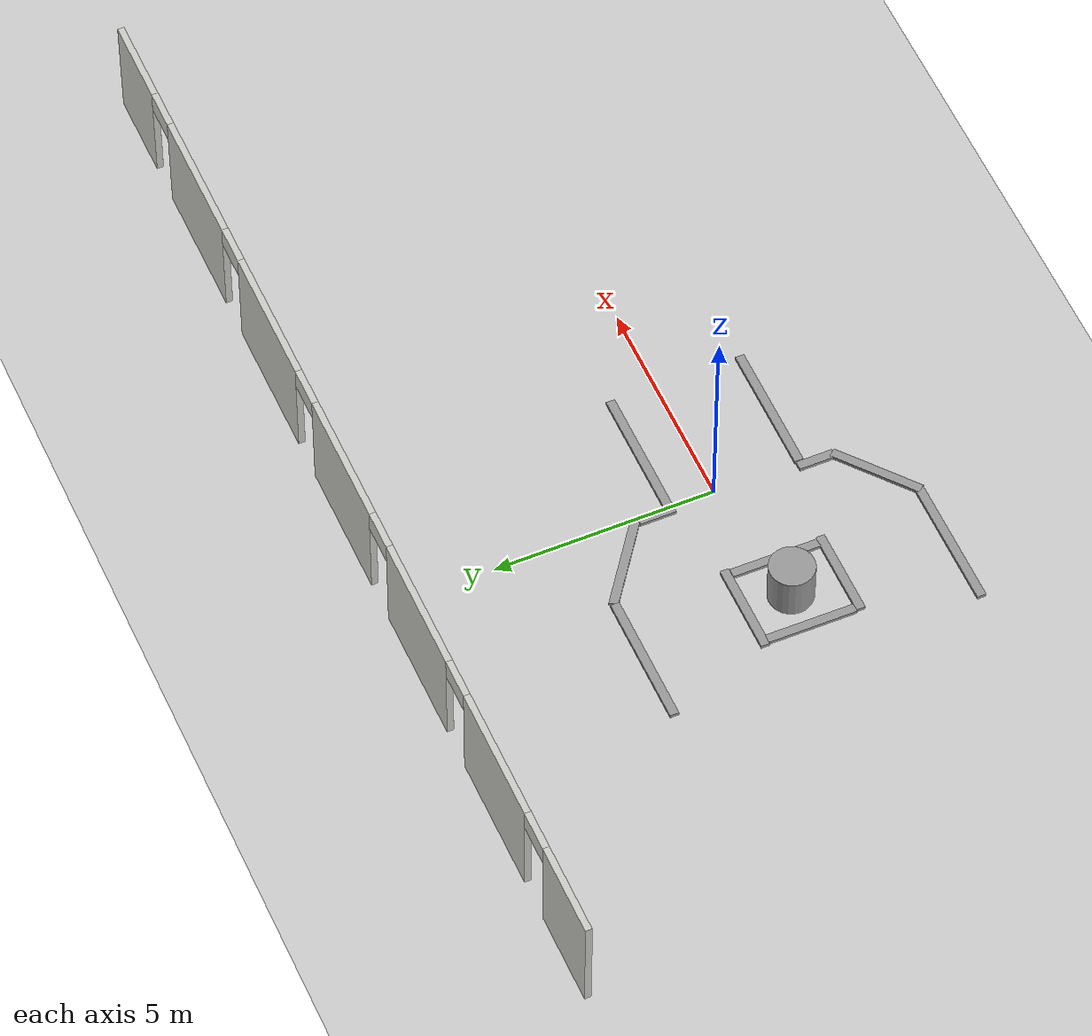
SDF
<sdf version="1.6">
 <world name="default">
  <model name="ground_plane">
   <static>1</static>
   <link name="link">
    <collision name="collision">
     <geometry><plane><normal>0 0 1</normal><size>100 100</size></plane></geometry>
     <surface><friction><ode><mu>100</mu><mu2>50</mu2></ode></friction></surface>
    </collision>
    <visual name="visual">
     <cast_shadows>0</cast_shadows>
     <geometry><plane><normal>0 0 1</normal><size>100 100</size></plane></geometry>
     <material>
      <script><uri>file://media/materials/scripts/gazebo.material</uri><name>Gazebo/Grey</name></script>
     </material>
    </visual>
   </link>
  </model>
  <model name="brick_box_3x1x3">
   <link name="link_1_clone_3_clone_10">
    <pose>6.19258 6.57027 0.5 0 0 -0.628314</pose>
    <inertial>
     <mass>0.633292</mass>
     <inertia>
      <ixx>0.107431</ixx>
      <ixy>0</ixy>
      <ixz>0</ixz>
      <iyy>0.0732112</iyy>
      <iyz>0</iyz>
      <izz>0.0750937</izz>
     </inertia>
    </inertial>
    <visual name="visual">
     <pose>0 0 -0.5 0 -0 0</pose>
     <geometry><box><size>2.17802 0.203535 0.1</size></box></geometry>
     <material>
      <lighting>1</lighting>
      <script><uri>file://media/materials/scripts/gazebo.material</uri><name>Gazebo/Grey</name></script>
      <ambient>0.3 0.3 0.3 1</ambient>
      <diffuse>0.7 0.7 0.7 1</diffuse>
      <specular>0.01 0.01 0.01 1</specular>
      <emissive>0 0 0 1</emissive>
      <shader type="vertex"><normal_map>__default__</normal_map></shader>
     </material>
    </visual>
    <collision name="collision">
     <pose>0 0 -0.5 0 -0 0</pose>
     <geometry><box><size>2.17802 0.203535 0.2</size></box></geometry>
     <surface>
      <friction>
       <ode><mu>1</mu><mu2>1</mu2><fdir1>0 0 0</fdir1><slip1>0</slip1><slip2>0</slip2></ode>
       <torsional>
        <coefficient>1</coefficient>
        <patch_radius>0</patch_radius>
        <surface_radius>0</surface_radius>
        <use_patch_radius>1</use_patch_radius>
        <ode><slip>0</slip></ode>
       </torsional>
      </friction>
      <bounce><restitution_coefficient>0</restitution_coefficient><threshold>1e+06</threshold></bounce>
      <contact>
       <collide_without_contact>0</collide_without_contact>
       <collide_without_contact_bitmask>1</collide_without_contact_bitmask>
       <collide_bitmask>1</collide_bitmask>
       <ode>
        <soft_cfm>0</soft_cfm>
        <soft_erp>0.2</soft_erp>
        <kp>1e+13</kp>
        <kd>1</kd>
        <max_vel>0.01</max_vel>
        <min_depth>0</min_depth>
       </ode>
       <bullet>
        <split_impulse>1</split_impulse>
        <split_impulse_penetration_threshold>-0.01</split_impulse_penetration_threshold>
        <soft_cfm>0</soft_cfm>
        <soft_erp>0.2</soft_erp>
        <kp>1e+13</kp>
        <kd>1</kd>
       </bullet>
      </contact>
     </surface>
    </collision>
   </link>
   <link name="link_1_clone_3_clone_10_clone_1_clone_0">
    <pose>7.00342 1.81838 0.5 0 0 -1.56821</pose>
    <inertial>
     <mass>0.239353</mass>
     <inertia>
      <ixx>0.0406036</ixx>
      <ixy>0</ixy>
      <ixz>0</ixz>
      <iyy>0.0210496</iyy>
      <iyz>0</iyz>
      <izz>0.0217608</izz>
     </inertia>
    </inertial>
    <visual name="visual">
     <pose>0 0 -0.5 0 -0 0</pose>
     <geometry><box><size>0.823187 0.203535 0.1</size></box></geometry>
     <material>
      <lighting>1</lighting>
      <script><uri>file://media/materials/scripts/gazebo.material</uri><name>Gazebo/Grey</name></script>
      <ambient>0.3 0.3 0.3 1</ambient>
      <diffuse>0.7 0.7 0.7 1</diffuse>
      <specular>0.01 0.01 0.01 1</specular>
      <emissive>0 0 0 1</emissive>
      <shader type="vertex"><normal_map>__default__</normal_map></shader>
     </material>
    </visual>
    <collision name="collision">
     <pose>0 0 -0.5 0 -0 0</pose>
     <geometry><box><size>0.823187 0.203535 0.2</size></box></geometry>
     <surface>
      <friction>
       <ode><mu>1</mu><mu2>1</mu2><fdir1>0 0 0</fdir1><slip1>0</slip1><slip2>0</slip2></ode>
       <torsional>
        <coefficient>1</coefficient>
        <patch_radius>0</patch_radius>
        <surface_radius>0</surface_radius>
        <use_patch_radius>1</use_patch_radius>
        <ode><slip>0</slip></ode>
       </torsional>
      </friction>
      <bounce><restitution_coefficient>0</restitution_coefficient><threshold>1e+06</threshold></bounce>
      <contact>
       <collide_without_contact>0</collide_without_contact>
       <collide_without_contact_bitmask>1</collide_without_contact_bitmask>
       <collide_bitmask>1</collide_bitmask>
       <ode>
        <soft_cfm>0</soft_cfm>
        <soft_erp>0.2</soft_erp>
        <kp>1e+13</kp>
        <kd>1</kd>
        <max_vel>0.01</max_vel>
        <min_depth>0</min_depth>
       </ode>
       <bullet>
        <split_impulse>1</split_impulse>
        <split_impulse_penetration_threshold>-0.01</split_impulse_penetration_threshold>
        <soft_cfm>0</soft_cfm>
        <soft_erp>0.2</soft_erp>
        <kp>1e+13</kp>
        <kd>1</kd>
       </bullet>
      </contact>
     </surface>
    </collision>
   </link>
   <link name="link_1_clone_3_clone_10_clone_1_clone_1">
    <pose>7.04036 5.46158 0.5 0 0 -1.56821</pose>
    <inertial>
     <mass>0.239353</mass>
     <inertia>
      <ixx>0.0406036</ixx>
      <ixy>0</ixy>
      <ixz>0</ixz>
      <iyy>0.0210496</iyy>
      <iyz>0</iyz>
      <izz>0.0217608</izz>
     </inertia>
    </inertial>
    <visual name="visual">
     <pose>0 0 -0.5 0 -0 0</pose>
     <geometry><box><size>0.823187 0.203535 0.1</size></box></geometry>
     <material>
      <lighting>1</lighting>
      <script><uri>file://media/materials/scripts/gazebo.material</uri><name>Gazebo/Grey</name></script>
      <ambient>0.3 0.3 0.3 1</ambient>
      <diffuse>0.7 0.7 0.7 1</diffuse>
      <specular>0.01 0.01 0.01 1</specular>
      <emissive>0 0 0 1</emissive>
      <shader type="vertex"><normal_map>__default__</normal_map></shader>
     </material>
    </visual>
    <collision name="collision">
     <pose>0 0 -0.5 0 -0 0</pose>
     <geometry><box><size>0.823187 0.203535 0.2</size></box></geometry>
     <surface>
      <friction>
       <ode><mu>1</mu><mu2>1</mu2><fdir1>0 0 0</fdir1><slip1>0</slip1><slip2>0</slip2></ode>
       <torsional>
        <coefficient>1</coefficient>
        <patch_radius>0</patch_radius>
        <surface_radius>0</surface_radius>
        <use_patch_radius>1</use_patch_radius>
        <ode><slip>0</slip></ode>
       </torsional>
      </friction>
      <bounce><restitution_coefficient>0</restitution_coefficient><threshold>1e+06</threshold></bounce>
      <contact>
       <collide_without_contact>0</collide_without_contact>
       <collide_without_contact_bitmask>1</collide_without_contact_bitmask>
       <collide_bitmask>1</collide_bitmask>
       <ode>
        <soft_cfm>0</soft_cfm>
        <soft_erp>0.2</soft_erp>
        <kp>1e+13</kp>
        <kd>1</kd>
        <max_vel>0.01</max_vel>
        <min_depth>0</min_depth>
       </ode>
       <bullet>
        <split_impulse>1</split_impulse>
        <split_impulse_penetration_threshold>-0.01</split_impulse_penetration_threshold>
        <soft_cfm>0</soft_cfm>
        <soft_erp>0.2</soft_erp>
        <kp>1e+13</kp>
        <kd>1</kd>
       </bullet>
      </contact>
     </surface>
    </collision>
   </link>
   <link name="link_1_clone_3_clone_10_clone_2">
    <pose>6.23458 0.770061 0.5 0 0 -2.45426</pose>
    <inertial>
     <mass>0.603389</mass>
     <inertia>
      <ixx>0.102359</ixx>
      <ixy>0</ixy>
      <ixz>0</ixz>
      <iyy>0.0679589</iyy>
      <iyz>0</iyz>
      <izz>0.0697524</izz>
     </inertia>
    </inertial>
    <visual name="visual">
     <pose>0 0 -0.5 0 -0 0</pose>
     <geometry><box><size>2.07517 0.203535 0.1</size></box></geometry>
     <material>
      <lighting>1</lighting>
      <script><uri>file://media/materials/scripts/gazebo.material</uri><name>Gazebo/Grey</name></script>
      <ambient>0.3 0.3 0.3 1</ambient>
      <diffuse>0.7 0.7 0.7 1</diffuse>
      <specular>0.01 0.01 0.01 1</specular>
      <emissive>0 0 0 1</emissive>
      <shader type="vertex"><normal_map>__default__</normal_map></shader>
     </material>
    </visual>
    <collision name="collision">
     <pose>0 0 -0.5 0 -0 0</pose>
     <geometry><box><size>2.07517 0.203535 0.2</size></box></geometry>
     <surface>
      <friction>
       <ode><mu>1</mu><mu2>1</mu2><fdir1>0 0 0</fdir1><slip1>0</slip1><slip2>0</slip2></ode>
       <torsional>
        <coefficient>1</coefficient>
        <patch_radius>0</patch_radius>
        <surface_radius>0</surface_radius>
        <use_patch_radius>1</use_patch_radius>
        <ode><slip>0</slip></ode>
       </torsional>
      </friction>
      <bounce><restitution_coefficient>0</restitution_coefficient><threshold>1e+06</threshold></bounce>
      <contact>
       <collide_without_contact>0</collide_without_contact>
       <collide_without_contact_bitmask>1</collide_without_contact_bitmask>
       <collide_bitmask>1</collide_bitmask>
       <ode>
        <soft_cfm>0</soft_cfm>
        <soft_erp>0.2</soft_erp>
        <kp>1e+13</kp>
        <kd>1</kd>
        <max_vel>0.01</max_vel>
        <min_depth>0</min_depth>
       </ode>
       <bullet>
        <split_impulse>1</split_impulse>
        <split_impulse_penetration_threshold>-0.01</split_impulse_penetration_threshold>
        <soft_cfm>0</soft_cfm>
        <soft_erp>0.2</soft_erp>
        <kp>1e+13</kp>
        <kd>1</kd>
       </bullet>
      </contact>
     </surface>
    </collision>
   </link>
   <link name="link_1_clone_3_clone_2">
    <pose>8.62043 2.14783 0.5 0 -0 0</pose>
    <inertial>
     <mass>1</mass>
     <inertia>
      <ixx>0.166667</ixx>
      <ixy>0</ixy>
      <ixz>0</ixz>
      <iyy>0.166667</iyy>
      <iyz>0</iyz>
      <izz>0.166667</izz>
     </inertia>
    </inertial>
    <visual name="visual">
     <pose>0 0 -0.5 0 -0 0</pose>
     <geometry><box><size>3 0.2 0.1</size></box></geometry>
     <material>
      <lighting>1</lighting>
      <script><uri>file://media/materials/scripts/gazebo.material</uri><name>Gazebo/Grey</name></script>
      <ambient>0.3 0.3 0.3 1</ambient>
      <diffuse>0.7 0.7 0.7 1</diffuse>
      <specular>0.01 0.01 0.01 1</specular>
      <emissive>0 0 0 1</emissive>
      <shader type="vertex"><normal_map>__default__</normal_map></shader>
     </material>
    </visual>
    <collision name="collision">
     <pose>0 0 -0.5 0 -0 0</pose>
     <geometry><box><size>3 0.2 0.2</size></box></geometry>
     <surface>
      <friction>
       <ode><mu>1</mu><mu2>1</mu2><fdir1>0 0 0</fdir1><slip1>0</slip1><slip2>0</slip2></ode>
       <torsional>
        <coefficient>1</coefficient>
        <patch_radius>0</patch_radius>
        <surface_radius>0</surface_radius>
        <use_patch_radius>1</use_patch_radius>
        <ode><slip>0</slip></ode>
       </torsional>
      </friction>
      <bounce><restitution_coefficient>0</restitution_coefficient><threshold>1e+06</threshold></bounce>
      <contact>
       <collide_without_contact>0</collide_without_contact>
       <collide_without_contact_bitmask>1</collide_without_contact_bitmask>
       <collide_bitmask>1</collide_bitmask>
       <ode>
        <soft_cfm>0</soft_cfm>
        <soft_erp>0.2</soft_erp>
        <kp>1e+13</kp>
        <kd>1</kd>
        <max_vel>0.01</max_vel>
        <min_depth>0</min_depth>
       </ode>
       <bullet>
        <split_impulse>1</split_impulse>
        <split_impulse_penetration_threshold>-0.01</split_impulse_penetration_threshold>
        <soft_cfm>0</soft_cfm>
        <soft_erp>0.2</soft_erp>
        <kp>1e+13</kp>
        <kd>1</kd>
       </bullet>
      </contact>
     </surface>
    </collision>
   </link>
   <link name="link_1_clone_3_clone_3">
    <pose>8.62079 5.14783 0.5 0 -0 0</pose>
    <inertial>
     <mass>1</mass>
     <inertia>
      <ixx>0.166667</ixx>
      <ixy>0</ixy>
      <ixz>0</ixz>
      <iyy>0.166667</iyy>
      <iyz>0</iyz>
      <izz>0.166667</izz>
     </inertia>
    </inertial>
    <visual name="visual">
     <pose>0 0 -0.5 0 -0 0</pose>
     <geometry><box><size>3 0.2 0.1</size></box></geometry>
     <material>
      <lighting>1</lighting>
      <script><uri>file://media/materials/scripts/gazebo.material</uri><name>Gazebo/Grey</name></script>
      <ambient>0.3 0.3 0.3 1</ambient>
      <diffuse>0.7 0.7 0.7 1</diffuse>
      <specular>0.01 0.01 0.01 1</specular>
      <emissive>0 0 0 1</emissive>
      <shader type="vertex"><normal_map>__default__</normal_map></shader>
     </material>
    </visual>
    <collision name="collision">
     <pose>0 0 -0.5 0 -0 0</pose>
     <geometry><box><size>3 0.2 0.2</size></box></geometry>
     <surface>
      <friction>
       <ode><mu>1</mu><mu2>1</mu2><fdir1>0 0 0</fdir1><slip1>0</slip1><slip2>0</slip2></ode>
       <torsional>
        <coefficient>1</coefficient>
        <patch_radius>0</patch_radius>
        <surface_radius>0</surface_radius>
        <use_patch_radius>1</use_patch_radius>
        <ode><slip>0</slip></ode>
       </torsional>
      </friction>
      <bounce><restitution_coefficient>0</restitution_coefficient><threshold>1e+06</threshold></bounce>
      <contact>
       <collide_without_contact>0</collide_without_contact>
       <collide_without_contact_bitmask>1</collide_without_contact_bitmask>
       <collide_bitmask>1</collide_bitmask>
       <ode>
        <soft_cfm>0</soft_cfm>
        <soft_erp>0.2</soft_erp>
        <kp>1e+13</kp>
        <kd>1</kd>
        <max_vel>0.01</max_vel>
        <min_depth>0</min_depth>
       </ode>
       <bullet>
        <split_impulse>1</split_impulse>
        <split_impulse_penetration_threshold>-0.01</split_impulse_penetration_threshold>
        <soft_cfm>0</soft_cfm>
        <soft_erp>0.2</soft_erp>
        <kp>1e+13</kp>
        <kd>1</kd>
       </bullet>
      </contact>
     </surface>
    </collision>
   </link>
   <link name="link_1_clone_3_clone_6">
    <pose>3.96174 0.14876 0.5 0 -0 0</pose>
    <inertial>
     <mass>1</mass>
     <inertia>
      <ixx>0.166667</ixx>
      <ixy>0</ixy>
      <ixz>0</ixz>
      <iyy>0.166667</iyy>
      <iyz>0</iyz>
      <izz>0.166667</izz>
     </inertia>
    </inertial>
    <visual name="visual">
     <pose>0 0 -0.5 0 -0 0</pose>
     <geometry><box><size>3 0.2 0.1</size></box></geometry>
     <material>
      <lighting>1</lighting>
      <script><uri>file://media/materials/scripts/gazebo.material</uri><name>Gazebo/Grey</name></script>
      <ambient>0.3 0.3 0.3 1</ambient>
      <diffuse>0.7 0.7 0.7 1</diffuse>
      <specular>0.01 0.01 0.01 1</specular>
      <emissive>0 0 0 1</emissive>
      <shader type="vertex"><normal_map>__default__</normal_map></shader>
     </material>
    </visual>
    <collision name="collision">
     <pose>0 0 -0.5 0 -0 0</pose>
     <geometry><box><size>3 0.2 0.2</size></box></geometry>
     <surface>
      <friction>
       <ode><mu>1</mu><mu2>1</mu2><fdir1>0 0 0</fdir1><slip1>0</slip1><slip2>0</slip2></ode>
       <torsional>
        <coefficient>1</coefficient>
        <patch_radius>0</patch_radius>
        <surface_radius>0</surface_radius>
        <use_patch_radius>1</use_patch_radius>
        <ode><slip>0</slip></ode>
       </torsional>
      </friction>
      <bounce><restitution_coefficient>0</restitution_coefficient><threshold>1e+06</threshold></bounce>
      <contact>
       <collide_without_contact>0</collide_without_contact>
       <collide_without_contact_bitmask>1</collide_without_contact_bitmask>
       <collide_bitmask>1</collide_bitmask>
       <ode>
        <soft_cfm>0</soft_cfm>
        <soft_erp>0.2</soft_erp>
        <kp>1e+13</kp>
        <kd>1</kd>
        <max_vel>0.01</max_vel>
        <min_depth>0</min_depth>
       </ode>
       <bullet>
        <split_impulse>1</split_impulse>
        <split_impulse_penetration_threshold>-0.01</split_impulse_penetration_threshold>
        <soft_cfm>0</soft_cfm>
        <soft_erp>0.2</soft_erp>
        <kp>1e+13</kp>
        <kd>1</kd>
       </bullet>
      </contact>
     </surface>
    </collision>
   </link>
   <link name="link_1_clone_3_clone_6_clone">
    <pose>4.16953 2.57278 0.5 0 -0 0</pose>
    <inertial>
     <mass>0.667428</mass>
     <inertia>
      <ixx>0.111238</ixx>
      <ixy>0</ixy>
      <ixz>0</ixz>
      <iyy>0.0803952</iyy>
      <iyz>0</iyz>
      <izz>0.0803952</izz>
     </inertia>
    </inertial>
    <visual name="visual">
     <pose>0 0 -0.5 0 -0 0</pose>
     <geometry><box><size>2.00229 0.2 0.1</size></box></geometry>
     <material>
      <lighting>1</lighting>
      <script><uri>file://media/materials/scripts/gazebo.material</uri><name>Gazebo/Grey</name></script>
      <ambient>0.3 0.3 0.3 1</ambient>
      <diffuse>0.7 0.7 0.7 1</diffuse>
      <specular>0.01 0.01 0.01 1</specular>
      <emissive>0 0 0 1</emissive>
      <shader type="vertex"><normal_map>__default__</normal_map></shader>
     </material>
    </visual>
    <collision name="collision">
     <pose>0 0 -0.5 0 -0 0</pose>
     <geometry><box><size>2.00229 0.2 0.2</size></box></geometry>
     <surface>
      <friction>
       <ode><mu>1</mu><mu2>1</mu2><fdir1>0 0 0</fdir1><slip1>0</slip1><slip2>0</slip2></ode>
       <torsional>
        <coefficient>1</coefficient>
        <patch_radius>0</patch_radius>
        <surface_radius>0</surface_radius>
        <use_patch_radius>1</use_patch_radius>
        <ode><slip>0</slip></ode>
       </torsional>
      </friction>
      <bounce><restitution_coefficient>0</restitution_coefficient><threshold>1e+06</threshold></bounce>
      <contact>
       <collide_without_contact>0</collide_without_contact>
       <collide_without_contact_bitmask>1</collide_without_contact_bitmask>
       <collide_bitmask>1</collide_bitmask>
       <ode>
        <soft_cfm>0</soft_cfm>
        <soft_erp>0.2</soft_erp>
        <kp>1e+13</kp>
        <kd>1</kd>
        <max_vel>0.01</max_vel>
        <min_depth>0</min_depth>
       </ode>
       <bullet>
        <split_impulse>1</split_impulse>
        <split_impulse_penetration_threshold>-0.01</split_impulse_penetration_threshold>
        <soft_cfm>0</soft_cfm>
        <soft_erp>0.2</soft_erp>
        <kp>1e+13</kp>
        <kd>1</kd>
       </bullet>
      </contact>
     </surface>
    </collision>
   </link>
   <link name="link_1_clone_3_clone_6_clone_0">
    <pose>4.15105 4.75979 0.5 0 -0 0</pose>
    <inertial>
     <mass>0.685907</mass>
     <inertia>
      <ixx>0.114318</ixx>
      <ixy>0</ixy>
      <ixz>0</ixz>
      <iyy>0.0840505</iyy>
      <iyz>0</iyz>
      <izz>0.0840505</izz>
     </inertia>
    </inertial>
    <visual name="visual">
     <pose>0 0 -0.5 0 -0 0</pose>
     <geometry><box><size>2.05772 0.2 0.1</size></box></geometry>
     <material>
      <lighting>1</lighting>
      <script><uri>file://media/materials/scripts/gazebo.material</uri><name>Gazebo/Grey</name></script>
      <ambient>0.3 0.3 0.3 1</ambient>
      <diffuse>0.7 0.7 0.7 1</diffuse>
      <specular>0.01 0.01 0.01 1</specular>
      <emissive>0 0 0 1</emissive>
      <shader type="vertex"><normal_map>__default__</normal_map></shader>
     </material>
    </visual>
    <collision name="collision">
     <pose>0 0 -0.5 0 -0 0</pose>
     <geometry><box><size>2.05772 0.2 0.2</size></box></geometry>
     <surface>
      <friction>
       <ode><mu>1</mu><mu2>1</mu2><fdir1>0 0 0</fdir1><slip1>0</slip1><slip2>0</slip2></ode>
       <torsional>
        <coefficient>1</coefficient>
        <patch_radius>0</patch_radius>
        <surface_radius>0</surface_radius>
        <use_patch_radius>1</use_patch_radius>
        <ode><slip>0</slip></ode>
       </torsional>
      </friction>
      <bounce><restitution_coefficient>0</restitution_coefficient><threshold>1e+06</threshold></bounce>
      <contact>
       <collide_without_contact>0</collide_without_contact>
       <collide_without_contact_bitmask>1</collide_without_contact_bitmask>
       <collide_bitmask>1</collide_bitmask>
       <ode>
        <soft_cfm>0</soft_cfm>
        <soft_erp>0.2</soft_erp>
        <kp>1e+13</kp>
        <kd>1</kd>
        <max_vel>0.01</max_vel>
        <min_depth>0</min_depth>
       </ode>
       <bullet>
        <split_impulse>1</split_impulse>
        <split_impulse_penetration_threshold>-0.01</split_impulse_penetration_threshold>
        <soft_cfm>0</soft_cfm>
        <soft_erp>0.2</soft_erp>
        <kp>1e+13</kp>
        <kd>1</kd>
       </bullet>
      </contact>
     </surface>
    </collision>
   </link>
   <link name="link_1_clone_3_clone_6_clone_clone">
    <pose>5.04034 3.65481 0.5 0 0 -1.57783</pose>
    <inertial>
     <mass>0.667428</mass>
     <inertia>
      <ixx>0.111238</ixx>
      <ixy>0</ixy>
      <ixz>0</ixz>
      <iyy>0.0803952</iyy>
      <iyz>0</iyz>
      <izz>0.0803952</izz>
     </inertia>
    </inertial>
    <visual name="visual">
     <pose>0 0 -0.5 0 -0 0</pose>
     <geometry><box><size>2.00229 0.2 0.1</size></box></geometry>
     <material>
      <lighting>1</lighting>
      <script><uri>file://media/materials/scripts/gazebo.material</uri><name>Gazebo/Grey</name></script>
      <ambient>0.3 0.3 0.3 1</ambient>
      <diffuse>0.7 0.7 0.7 1</diffuse>
      <specular>0.01 0.01 0.01 1</specular>
      <emissive>0 0 0 1</emissive>
      <shader type="vertex"><normal_map>__default__</normal_map></shader>
     </material>
    </visual>
    <collision name="collision">
     <pose>0 0 -0.5 0 -0 0</pose>
     <geometry><box><size>2.00229 0.2 0.2</size></box></geometry>
     <surface>
      <friction>
       <ode><mu>1</mu><mu2>1</mu2><fdir1>0 0 0</fdir1><slip1>0</slip1><slip2>0</slip2></ode>
       <torsional>
        <coefficient>1</coefficient>
        <patch_radius>0</patch_radius>
        <surface_radius>0</surface_radius>
        <use_patch_radius>1</use_patch_radius>
        <ode><slip>0</slip></ode>
       </torsional>
      </friction>
      <bounce><restitution_coefficient>0</restitution_coefficient><threshold>1e+06</threshold></bounce>
      <contact>
       <collide_without_contact>0</collide_without_contact>
       <collide_without_contact_bitmask>1</collide_without_contact_bitmask>
       <collide_bitmask>1</collide_bitmask>
       <ode>
        <soft_cfm>0</soft_cfm>
        <soft_erp>0.2</soft_erp>
        <kp>1e+13</kp>
        <kd>1</kd>
        <max_vel>0.01</max_vel>
        <min_depth>0</min_depth>
       </ode>
       <bullet>
        <split_impulse>1</split_impulse>
        <split_impulse_penetration_threshold>-0.01</split_impulse_penetration_threshold>
        <soft_cfm>0</soft_cfm>
        <soft_erp>0.2</soft_erp>
        <kp>1e+13</kp>
        <kd>1</kd>
       </bullet>
      </contact>
     </surface>
    </collision>
   </link>
   <link name="link_1_clone_3_clone_6_clone_clone_clone">
    <pose>3.24334 3.67433 0.5 0 0 -1.57783</pose>
    <inertial>
     <mass>0.667428</mass>
     <inertia>
      <ixx>0.111238</ixx>
      <ixy>0</ixy>
      <ixz>0</ixz>
      <iyy>0.0803952</iyy>
      <iyz>0</iyz>
      <izz>0.0803952</izz>
     </inertia>
    </inertial>
    <visual name="visual">
     <pose>0 0 -0.5 0 -0 0</pose>
     <geometry><box><size>2.00229 0.2 0.1</size></box></geometry>
     <material>
      <lighting>1</lighting>
      <script><uri>file://media/materials/scripts/gazebo.material</uri><name>Gazebo/Grey</name></script>
      <ambient>0.3 0.3 0.3 1</ambient>
      <diffuse>0.7 0.7 0.7 1</diffuse>
      <specular>0.01 0.01 0.01 1</specular>
      <emissive>0 0 0 1</emissive>
      <shader type="vertex"><normal_map>__default__</normal_map></shader>
     </material>
    </visual>
    <collision name="collision">
     <pose>0 0 -0.5 0 -0 0</pose>
     <geometry><box><size>2.00229 0.2 0.2</size></box></geometry>
     <surface>
      <friction>
       <ode><mu>1</mu><mu2>1</mu2><fdir1>0 0 0</fdir1><slip1>0</slip1><slip2>0</slip2></ode>
       <torsional>
        <coefficient>1</coefficient>
        <patch_radius>0</patch_radius>
        <surface_radius>0</surface_radius>
        <use_patch_radius>1</use_patch_radius>
        <ode><slip>0</slip></ode>
       </torsional>
      </friction>
      <bounce><restitution_coefficient>0</restitution_coefficient><threshold>1e+06</threshold></bounce>
      <contact>
       <collide_without_contact>0</collide_without_contact>
       <collide_without_contact_bitmask>1</collide_without_contact_bitmask>
       <collide_bitmask>1</collide_bitmask>
       <ode>
        <soft_cfm>0</soft_cfm>
        <soft_erp>0.2</soft_erp>
        <kp>1e+13</kp>
        <kd>1</kd>
        <max_vel>0.01</max_vel>
        <min_depth>0</min_depth>
       </ode>
       <bullet>
        <split_impulse>1</split_impulse>
        <split_impulse_penetration_threshold>-0.01</split_impulse_penetration_threshold>
        <soft_cfm>0</soft_cfm>
        <soft_erp>0.2</soft_erp>
        <kp>1e+13</kp>
        <kd>1</kd>
       </bullet>
      </contact>
     </surface>
    </collision>
   </link>
   <link name="link_1_clone_3_clone_7">
    <pose>3.80039 7.18262 0.5 0 -0 0</pose>
    <inertial>
     <mass>1</mass>
     <inertia>
      <ixx>0.166667</ixx>
      <ixy>0</ixy>
      <ixz>0</ixz>
      <iyy>0.166667</iyy>
      <iyz>0</iyz>
      <izz>0.166667</izz>
     </inertia>
    </inertial>
    <visual name="visual">
     <pose>0 0 -0.5 0 -0 0</pose>
     <geometry><box><size>3 0.2 0.1</size></box></geometry>
     <material>
      <lighting>1</lighting>
      <script><uri>file://media/materials/scripts/gazebo.material</uri><name>Gazebo/Grey</name></script>
      <ambient>0.3 0.3 0.3 1</ambient>
      <diffuse>0.7 0.7 0.7 1</diffuse>
      <specular>0.01 0.01 0.01 1</specular>
      <emissive>0 0 0 1</emissive>
      <shader type="vertex"><normal_map>__default__</normal_map></shader>
     </material>
    </visual>
    <collision name="collision">
     <pose>0 0 -0.5 0 -0 0</pose>
     <geometry><box><size>3 0.2 0.2</size></box></geometry>
     <surface>
      <friction>
       <ode><mu>1</mu><mu2>1</mu2><fdir1>0 0 0</fdir1><slip1>0</slip1><slip2>0</slip2></ode>
       <torsional>
        <coefficient>1</coefficient>
        <patch_radius>0</patch_radius>
        <surface_radius>0</surface_radius>
        <use_patch_radius>1</use_patch_radius>
        <ode><slip>0</slip></ode>
       </torsional>
      </friction>
      <bounce><restitution_coefficient>0</restitution_coefficient><threshold>1e+06</threshold></bounce>
      <contact>
       <collide_without_contact>0</collide_without_contact>
       <collide_without_contact_bitmask>1</collide_without_contact_bitmask>
       <collide_bitmask>1</collide_bitmask>
       <ode>
        <soft_cfm>0</soft_cfm>
        <soft_erp>0.2</soft_erp>
        <kp>1e+13</kp>
        <kd>1</kd>
        <max_vel>0.01</max_vel>
        <min_depth>0</min_depth>
       </ode>
       <bullet>
        <split_impulse>1</split_impulse>
        <split_impulse_penetration_threshold>-0.01</split_impulse_penetration_threshold>
        <soft_cfm>0</soft_cfm>
        <soft_erp>0.2</soft_erp>
        <kp>1e+13</kp>
        <kd>1</kd>
       </bullet>
      </contact>
     </surface>
    </collision>
   </link>
   <static>1</static>
   <pose>-7.10254 -4.10597 0 0 -0 0</pose>
  </model>
  <model name="unit_cylinder_0">
   <pose>-3.00095 -0.366483 0.499997 3e-06 4e-06 -0</pose>
   <link name="link">
    <inertial>
     <mass>1</mass>
     <inertia><ixx>0.145833</ixx><ixy>0</ixy><ixz>0</ixz><iyy>0.145833</iyy><iyz>0</iyz><izz>0.125</izz></inertia>
    </inertial>
    <collision name="collision">
     <geometry><cylinder><radius>0.5</radius><length>1</length></cylinder></geometry>
    </collision>
    <visual name="visual">
     <geometry><cylinder><radius>0.5</radius><length>1</length></cylinder></geometry>
     <material>
      <script><name>Gazebo/Grey</name><uri>file://media/materials/scripts/gazebo.material</uri></script>
     </material>
    </visual>
   </link>
  </model>
  <model name="CV1_giardino2">
   <link name="Wall_4">
    <pose>-0.226762 7.50382 0 0 -0 0</pose>
    <visual name="Wall_4_Visual_0">
     <pose>-11.4576 0 1.25 0 -0 0</pose>
     <geometry><box><size>2.08487 0.15 2.5</size></box></geometry>
     <material>
      <script><uri>file://media/materials/scripts/gazebo.material</uri><name>Gazebo/CeilingTiled</name></script>
      <ambient>1 1 1 1</ambient>
      <diffuse>1 1 1 1</diffuse>
      <specular>0 0 0 1</specular>
      <emissive>0 0 0 1</emissive>
     </material>
    </visual>
    <visual name="Wall_4_Visual_1">
     <pose>-7.98803 0 1.25 0 -0 0</pose>
     <geometry><box><size>3.0542 0.15 2.5</size></box></geometry>
     <material>
      <script><uri>file://media/materials/scripts/gazebo.material</uri><name>Gazebo/CeilingTiled</name></script>
      <ambient>1 1 1 1</ambient>
      <diffuse>1 1 1 1</diffuse>
      <specular>0 0 0 1</specular>
      <emissive>0 0 0 1</emissive>
     </material>
    </visual>
    <visual name="Wall_4_Visual_3">
     <pose>-0.033855 0 1.25 0 -0 0</pose>
     <geometry><box><size>3.07251 0.15 2.5</size></box></geometry>
     <material>
      <script><uri>file://media/materials/scripts/gazebo.material</uri><name>Gazebo/CeilingTiled</name></script>
      <ambient>1 1 1 1</ambient>
      <diffuse>1 1 1 1</diffuse>
      <specular>0 0 0 1</specular>
      <emissive>0 0 0 1</emissive>
     </material>
    </visual>
    <visual name="Wall_4_Visual_2">
     <pose>-4.01552 0 1.25 0 -0 0</pose>
     <geometry><box><size>3.09082 0.15 2.5</size></box></geometry>
     <material>
      <script><uri>file://media/materials/scripts/gazebo.material</uri><name>Gazebo/CeilingTiled</name></script>
      <ambient>1 1 1 1</ambient>
      <diffuse>1 1 1 1</diffuse>
      <specular>0 0 0 1</specular>
      <emissive>0 0 0 1</emissive>
     </material>
    </visual>
    <visual name="Wall_4_Visual_4">
     <pose>3.99357 0 1.25 0 -0 0</pose>
     <geometry><box><size>3.18235 0.15 2.5</size></box></geometry>
     <material>
      <script><uri>file://media/materials/scripts/gazebo.material</uri><name>Gazebo/CeilingTiled</name></script>
      <ambient>1 1 1 1</ambient>
      <diffuse>1 1 1 1</diffuse>
      <specular>0 0 0 1</specular>
      <emissive>0 0 0 1</emissive>
     </material>
    </visual>
    <visual name="Wall_4_Visual_5">
     <pose>8.04288 0 1.25 0 -0 0</pose>
     <geometry><box><size>3.11626 0.15 2.5</size></box></geometry>
     <material>
      <script><uri>file://media/materials/scripts/gazebo.material</uri><name>Gazebo/CeilingTiled</name></script>
      <ambient>1 1 1 1</ambient>
      <diffuse>1 1 1 1</diffuse>
      <specular>0 0 0 1</specular>
      <emissive>0 0 0 1</emissive>
     </material>
    </visual>
    <visual name="Wall_4_Visual_6">
     <pose>11.5005 0 1.25 0 -0 0</pose>
     <geometry><box><size>1.99899 0.15 2.5</size></box></geometry>
     <material>
      <script><uri>file://media/materials/scripts/gazebo.material</uri><name>Gazebo/CeilingTiled</name></script>
      <ambient>1 1 1 1</ambient>
      <diffuse>1 1 1 1</diffuse>
      <specular>0 0 0 1</specular>
      <emissive>0 0 0 1</emissive>
     </material>
    </visual>
    <visual name="Wall_4_Visual_7">
     <pose>-9.96513 0 2.25 0 -0 0</pose>
     <geometry><box><size>0.9 0.15 0.5</size></box></geometry>
     <material>
      <script><uri>file://media/materials/scripts/gazebo.material</uri><name>Gazebo/CeilingTiled</name></script>
      <ambient>1 1 1 1</ambient>
      <diffuse>1 1 1 1</diffuse>
      <specular>0 0 0 1</specular>
      <emissive>0 0 0 1</emissive>
     </material>
    </visual>
    <visual name="Wall_4_Visual_8">
     <pose>-6.01093 0 2.25 0 -0 0</pose>
     <geometry><box><size>0.9 0.15 0.5</size></box></geometry>
     <material>
      <script><uri>file://media/materials/scripts/gazebo.material</uri><name>Gazebo/CeilingTiled</name></script>
      <ambient>1 1 1 1</ambient>
      <diffuse>1 1 1 1</diffuse>
      <specular>0 0 0 1</specular>
      <emissive>0 0 0 1</emissive>
     </material>
    </visual>
    <visual name="Wall_4_Visual_9">
     <pose>-2.02011 0 2.25 0 -0 0</pose>
     <geometry><box><size>0.9 0.15 0.5</size></box></geometry>
     <material>
      <script><uri>file://media/materials/scripts/gazebo.material</uri><name>Gazebo/CeilingTiled</name></script>
      <ambient>1 1 1 1</ambient>
      <diffuse>1 1 1 1</diffuse>
      <specular>0 0 0 1</specular>
      <emissive>0 0 0 1</emissive>
     </material>
    </visual>
    <visual name="Wall_4_Visual_11">
     <pose>6.03475 0 2.25 0 -0 0</pose>
     <geometry><box><size>0.9 0.15 0.5</size></box></geometry>
     <material>
      <script><uri>file://media/materials/scripts/gazebo.material</uri><name>Gazebo/CeilingTiled</name></script>
      <ambient>1 1 1 1</ambient>
      <diffuse>1 1 1 1</diffuse>
      <specular>0 0 0 1</specular>
      <emissive>0 0 0 1</emissive>
     </material>
    </visual>
    <visual name="Wall_4_Visual_10">
     <pose>1.9524 0 2.25 0 -0 0</pose>
     <geometry><box><size>0.9 0.15 0.5</size></box></geometry>
     <material>
      <script><uri>file://media/materials/scripts/gazebo.material</uri><name>Gazebo/CeilingTiled</name></script>
      <ambient>1 1 1 1</ambient>
      <diffuse>1 1 1 1</diffuse>
      <specular>0 0 0 1</specular>
      <emissive>0 0 0 1</emissive>
     </material>
    </visual>
    <visual name="Wall_4_Visual_12">
     <pose>10.051 0 2.25 0 -0 0</pose>
     <geometry><box><size>0.9 0.15 0.5</size></box></geometry>
     <material>
      <script><uri>file://media/materials/scripts/gazebo.material</uri><name>Gazebo/CeilingTiled</name></script>
      <ambient>1 1 1 1</ambient>
      <diffuse>1 1 1 1</diffuse>
      <specular>0 0 0 1</specular>
      <emissive>0 0 0 1</emissive>
     </material>
    </visual>
    <collision name="Wall_4_Collision_11">
     <pose>6.03475 0 2.25 0 -0 0</pose>
     <geometry><box><size>0.9 0.15 0.5</size></box></geometry>
     <surface>
      <friction>
       <ode><mu>1</mu><mu2>1</mu2><fdir1>0 0 0</fdir1><slip1>0</slip1><slip2>0</slip2></ode>
       <torsional>
        <coefficient>1</coefficient>
        <patch_radius>0</patch_radius>
        <surface_radius>0</surface_radius>
        <use_patch_radius>1</use_patch_radius>
        <ode><slip>0</slip></ode>
       </torsional>
      </friction>
      <bounce><restitution_coefficient>0</restitution_coefficient><threshold>1e+06</threshold></bounce>
      <contact>
       <collide_without_contact>0</collide_without_contact>
       <collide_without_contact_bitmask>1</collide_without_contact_bitmask>
       <collide_bitmask>1</collide_bitmask>
       <ode>
        <soft_cfm>0</soft_cfm>
        <soft_erp>0.2</soft_erp>
        <kp>1e+13</kp>
        <kd>1</kd>
        <max_vel>0.01</max_vel>
        <min_depth>0</min_depth>
       </ode>
       <bullet>
        <split_impulse>1</split_impulse>
        <split_impulse_penetration_threshold>-0.01</split_impulse_penetration_threshold>
        <soft_cfm>0</soft_cfm>
        <soft_erp>0.2</soft_erp>
        <kp>1e+13</kp>
        <kd>1</kd>
       </bullet>
      </contact>
     </surface>
    </collision>
    <collision name="Wall_4_Collision_0">
     <pose>-11.4576 0 1.25 0 -0 0</pose>
     <geometry><box><size>2.08487 0.15 2.5</size></box></geometry>
     <surface>
      <friction>
       <ode><mu>1</mu><mu2>1</mu2><fdir1>0 0 0</fdir1><slip1>0</slip1><slip2>0</slip2></ode>
       <torsional>
        <coefficient>1</coefficient>
        <patch_radius>0</patch_radius>
        <surface_radius>0</surface_radius>
        <use_patch_radius>1</use_patch_radius>
        <ode><slip>0</slip></ode>
       </torsional>
      </friction>
      <bounce><restitution_coefficient>0</restitution_coefficient><threshold>1e+06</threshold></bounce>
      <contact>
       <collide_without_contact>0</collide_without_contact>
       <collide_without_contact_bitmask>1</collide_without_contact_bitmask>
       <collide_bitmask>1</collide_bitmask>
       <ode>
        <soft_cfm>0</soft_cfm>
        <soft_erp>0.2</soft_erp>
        <kp>1e+13</kp>
        <kd>1</kd>
        <max_vel>0.01</max_vel>
        <min_depth>0</min_depth>
       </ode>
       <bullet>
        <split_impulse>1</split_impulse>
        <split_impulse_penetration_threshold>-0.01</split_impulse_penetration_threshold>
        <soft_cfm>0</soft_cfm>
        <soft_erp>0.2</soft_erp>
        <kp>1e+13</kp>
        <kd>1</kd>
       </bullet>
      </contact>
     </surface>
    </collision>
    <collision name="Wall_4_Collision_1">
     <pose>-7.98803 0 1.25 0 -0 0</pose>
     <geometry><box><size>3.0542 0.15 2.5</size></box></geometry>
     <surface>
      <friction>
       <ode><mu>1</mu><mu2>1</mu2><fdir1>0 0 0</fdir1><slip1>0</slip1><slip2>0</slip2></ode>
       <torsional>
        <coefficient>1</coefficient>
        <patch_radius>0</patch_radius>
        <surface_radius>0</surface_radius>
        <use_patch_radius>1</use_patch_radius>
        <ode><slip>0</slip></ode>
       </torsional>
      </friction>
      <bounce><restitution_coefficient>0</restitution_coefficient><threshold>1e+06</threshold></bounce>
      <contact>
       <collide_without_contact>0</collide_without_contact>
       <collide_without_contact_bitmask>1</collide_without_contact_bitmask>
       <collide_bitmask>1</collide_bitmask>
       <ode>
        <soft_cfm>0</soft_cfm>
        <soft_erp>0.2</soft_erp>
        <kp>1e+13</kp>
        <kd>1</kd>
        <max_vel>0.01</max_vel>
        <min_depth>0</min_depth>
       </ode>
       <bullet>
        <split_impulse>1</split_impulse>
        <split_impulse_penetration_threshold>-0.01</split_impulse_penetration_threshold>
        <soft_cfm>0</soft_cfm>
        <soft_erp>0.2</soft_erp>
        <kp>1e+13</kp>
        <kd>1</kd>
       </bullet>
      </contact>
     </surface>
    </collision>
    <collision name="Wall_4_Collision_2">
     <pose>-4.01552 0 1.25 0 -0 0</pose>
     <geometry><box><size>3.09082 0.15 2.5</size></box></geometry>
     <surface>
      <friction>
       <ode><mu>1</mu><mu2>1</mu2><fdir1>0 0 0</fdir1><slip1>0</slip1><slip2>0</slip2></ode>
       <torsional>
        <coefficient>1</coefficient>
        <patch_radius>0</patch_radius>
        <surface_radius>0</surface_radius>
        <use_patch_radius>1</use_patch_radius>
        <ode><slip>0</slip></ode>
       </torsional>
      </friction>
      <bounce><restitution_coefficient>0</restitution_coefficient><threshold>1e+06</threshold></bounce>
      <contact>
       <collide_without_contact>0</collide_without_contact>
       <collide_without_contact_bitmask>1</collide_without_contact_bitmask>
       <collide_bitmask>1</collide_bitmask>
       <ode>
        <soft_cfm>0</soft_cfm>
        <soft_erp>0.2</soft_erp>
        <kp>1e+13</kp>
        <kd>1</kd>
        <max_vel>0.01</max_vel>
        <min_depth>0</min_depth>
       </ode>
       <bullet>
        <split_impulse>1</split_impulse>
        <split_impulse_penetration_threshold>-0.01</split_impulse_penetration_threshold>
        <soft_cfm>0</soft_cfm>
        <soft_erp>0.2</soft_erp>
        <kp>1e+13</kp>
        <kd>1</kd>
       </bullet>
      </contact>
     </surface>
    </collision>
    <collision name="Wall_4_Collision_3">
     <pose>-0.033855 0 1.25 0 -0 0</pose>
     <geometry><box><size>3.07251 0.15 2.5</size></box></geometry>
     <surface>
      <friction>
       <ode><mu>1</mu><mu2>1</mu2><fdir1>0 0 0</fdir1><slip1>0</slip1><slip2>0</slip2></ode>
       <torsional>
        <coefficient>1</coefficient>
        <patch_radius>0</patch_radius>
        <surface_radius>0</surface_radius>
        <use_patch_radius>1</use_patch_radius>
        <ode><slip>0</slip></ode>
       </torsional>
      </friction>
      <bounce><restitution_coefficient>0</restitution_coefficient><threshold>1e+06</threshold></bounce>
      <contact>
       <collide_without_contact>0</collide_without_contact>
       <collide_without_contact_bitmask>1</collide_without_contact_bitmask>
       <collide_bitmask>1</collide_bitmask>
       <ode>
        <soft_cfm>0</soft_cfm>
        <soft_erp>0.2</soft_erp>
        <kp>1e+13</kp>
        <kd>1</kd>
        <max_vel>0.01</max_vel>
        <min_depth>0</min_depth>
       </ode>
       <bullet>
        <split_impulse>1</split_impulse>
        <split_impulse_penetration_threshold>-0.01</split_impulse_penetration_threshold>
        <soft_cfm>0</soft_cfm>
        <soft_erp>0.2</soft_erp>
        <kp>1e+13</kp>
        <kd>1</kd>
       </bullet>
      </contact>
     </surface>
    </collision>
    <collision name="Wall_4_Collision_4">
     <pose>3.99357 0 1.25 0 -0 0</pose>
     <geometry><box><size>3.18235 0.15 2.5</size></box></geometry>
     <surface>
      <friction>
       <ode><mu>1</mu><mu2>1</mu2><fdir1>0 0 0</fdir1><slip1>0</slip1><slip2>0</slip2></ode>
       <torsional>
        <coefficient>1</coefficient>
        <patch_radius>0</patch_radius>
        <surface_radius>0</surface_radius>
        <use_patch_radius>1</use_patch_radius>
        <ode><slip>0</slip></ode>
       </torsional>
      </friction>
      <bounce><restitution_coefficient>0</restitution_coefficient><threshold>1e+06</threshold></bounce>
      <contact>
       <collide_without_contact>0</collide_without_contact>
       <collide_without_contact_bitmask>1</collide_without_contact_bitmask>
       <collide_bitmask>1</collide_bitmask>
       <ode>
        <soft_cfm>0</soft_cfm>
        <soft_erp>0.2</soft_erp>
        <kp>1e+13</kp>
        <kd>1</kd>
        <max_vel>0.01</max_vel>
        <min_depth>0</min_depth>
       </ode>
       <bullet>
        <split_impulse>1</split_impulse>
        <split_impulse_penetration_threshold>-0.01</split_impulse_penetration_threshold>
        <soft_cfm>0</soft_cfm>
        <soft_erp>0.2</soft_erp>
        <kp>1e+13</kp>
        <kd>1</kd>
       </bullet>
      </contact>
     </surface>
    </collision>
    <collision name="Wall_4_Collision_5">
     <pose>8.04288 0 1.25 0 -0 0</pose>
     <geometry><box><size>3.11626 0.15 2.5</size></box></geometry>
     <surface>
      <friction>
       <ode><mu>1</mu><mu2>1</mu2><fdir1>0 0 0</fdir1><slip1>0</slip1><slip2>0</slip2></ode>
       <torsional>
        <coefficient>1</coefficient>
        <patch_radius>0</patch_radius>
        <surface_radius>0</surface_radius>
        <use_patch_radius>1</use_patch_radius>
        <ode><slip>0</slip></ode>
       </torsional>
      </friction>
      <bounce><restitution_coefficient>0</restitution_coefficient><threshold>1e+06</threshold></bounce>
      <contact>
       <collide_without_contact>0</collide_without_contact>
       <collide_without_contact_bitmask>1</collide_without_contact_bitmask>
       <collide_bitmask>1</collide_bitmask>
       <ode>
        <soft_cfm>0</soft_cfm>
        <soft_erp>0.2</soft_erp>
        <kp>1e+13</kp>
        <kd>1</kd>
        <max_vel>0.01</max_vel>
        <min_depth>0</min_depth>
       </ode>
       <bullet>
        <split_impulse>1</split_impulse>
        <split_impulse_penetration_threshold>-0.01</split_impulse_penetration_threshold>
        <soft_cfm>0</soft_cfm>
        <soft_erp>0.2</soft_erp>
        <kp>1e+13</kp>
        <kd>1</kd>
       </bullet>
      </contact>
     </surface>
    </collision>
    <collision name="Wall_4_Collision_7">
     <pose>-9.96513 0 2.25 0 -0 0</pose>
     <geometry><box><size>0.9 0.15 0.5</size></box></geometry>
     <surface>
      <friction>
       <ode><mu>1</mu><mu2>1</mu2><fdir1>0 0 0</fdir1><slip1>0</slip1><slip2>0</slip2></ode>
       <torsional>
        <coefficient>1</coefficient>
        <patch_radius>0</patch_radius>
        <surface_radius>0</surface_radius>
        <use_patch_radius>1</use_patch_radius>
        <ode><slip>0</slip></ode>
       </torsional>
      </friction>
      <bounce><restitution_coefficient>0</restitution_coefficient><threshold>1e+06</threshold></bounce>
      <contact>
       <collide_without_contact>0</collide_without_contact>
       <collide_without_contact_bitmask>1</collide_without_contact_bitmask>
       <collide_bitmask>1</collide_bitmask>
       <ode>
        <soft_cfm>0</soft_cfm>
        <soft_erp>0.2</soft_erp>
        <kp>1e+13</kp>
        <kd>1</kd>
        <max_vel>0.01</max_vel>
        <min_depth>0</min_depth>
       </ode>
       <bullet>
        <split_impulse>1</split_impulse>
        <split_impulse_penetration_threshold>-0.01</split_impulse_penetration_threshold>
        <soft_cfm>0</soft_cfm>
        <soft_erp>0.2</soft_erp>
        <kp>1e+13</kp>
        <kd>1</kd>
       </bullet>
      </contact>
     </surface>
    </collision>
    <collision name="Wall_4_Collision_9">
     <pose>-2.02011 0 2.25 0 -0 0</pose>
     <geometry><box><size>0.9 0.15 0.5</size></box></geometry>
     <surface>
      <friction>
       <ode><mu>1</mu><mu2>1</mu2><fdir1>0 0 0</fdir1><slip1>0</slip1><slip2>0</slip2></ode>
       <torsional>
        <coefficient>1</coefficient>
        <patch_radius>0</patch_radius>
        <surface_radius>0</surface_radius>
        <use_patch_radius>1</use_patch_radius>
        <ode><slip>0</slip></ode>
       </torsional>
      </friction>
      <bounce><restitution_coefficient>0</restitution_coefficient><threshold>1e+06</threshold></bounce>
      <contact>
       <collide_without_contact>0</collide_without_contact>
       <collide_without_contact_bitmask>1</collide_without_contact_bitmask>
       <collide_bitmask>1</collide_bitmask>
       <ode>
        <soft_cfm>0</soft_cfm>
        <soft_erp>0.2</soft_erp>
        <kp>1e+13</kp>
        <kd>1</kd>
        <max_vel>0.01</max_vel>
        <min_depth>0</min_depth>
       </ode>
       <bullet>
        <split_impulse>1</split_impulse>
        <split_impulse_penetration_threshold>-0.01</split_impulse_penetration_threshold>
        <soft_cfm>0</soft_cfm>
        <soft_erp>0.2</soft_erp>
        <kp>1e+13</kp>
        <kd>1</kd>
       </bullet>
      </contact>
     </surface>
    </collision>
    <collision name="Wall_4_Collision_6">
     <pose>11.5005 0 1.25 0 -0 0</pose>
     <geometry><box><size>1.99899 0.15 2.5</size></box></geometry>
     <surface>
      <friction>
       <ode><mu>1</mu><mu2>1</mu2><fdir1>0 0 0</fdir1><slip1>0</slip1><slip2>0</slip2></ode>
       <torsional>
        <coefficient>1</coefficient>
        <patch_radius>0</patch_radius>
        <surface_radius>0</surface_radius>
        <use_patch_radius>1</use_patch_radius>
        <ode><slip>0</slip></ode>
       </torsional>
      </friction>
      <bounce><restitution_coefficient>0</restitution_coefficient><threshold>1e+06</threshold></bounce>
      <contact>
       <collide_without_contact>0</collide_without_contact>
       <collide_without_contact_bitmask>1</collide_without_contact_bitmask>
       <collide_bitmask>1</collide_bitmask>
       <ode>
        <soft_cfm>0</soft_cfm>
        <soft_erp>0.2</soft_erp>
        <kp>1e+13</kp>
        <kd>1</kd>
        <max_vel>0.01</max_vel>
        <min_depth>0</min_depth>
       </ode>
       <bullet>
        <split_impulse>1</split_impulse>
        <split_impulse_penetration_threshold>-0.01</split_impulse_penetration_threshold>
        <soft_cfm>0</soft_cfm>
        <soft_erp>0.2</soft_erp>
        <kp>1e+13</kp>
        <kd>1</kd>
       </bullet>
      </contact>
     </surface>
    </collision>
    <collision name="Wall_4_Collision_8">
     <pose>-6.01093 0 2.25 0 -0 0</pose>
     <geometry><box><size>0.9 0.15 0.5</size></box></geometry>
     <surface>
      <friction>
       <ode><mu>1</mu><mu2>1</mu2><fdir1>0 0 0</fdir1><slip1>0</slip1><slip2>0</slip2></ode>
       <torsional>
        <coefficient>1</coefficient>
        <patch_radius>0</patch_radius>
        <surface_radius>0</surface_radius>
        <use_patch_radius>1</use_patch_radius>
        <ode><slip>0</slip></ode>
       </torsional>
      </friction>
      <bounce><restitution_coefficient>0</restitution_coefficient><threshold>1e+06</threshold></bounce>
      <contact>
       <collide_without_contact>0</collide_without_contact>
       <collide_without_contact_bitmask>1</collide_without_contact_bitmask>
       <collide_bitmask>1</collide_bitmask>
       <ode>
        <soft_cfm>0</soft_cfm>
        <soft_erp>0.2</soft_erp>
        <kp>1e+13</kp>
        <kd>1</kd>
        <max_vel>0.01</max_vel>
        <min_depth>0</min_depth>
       </ode>
       <bullet>
        <split_impulse>1</split_impulse>
        <split_impulse_penetration_threshold>-0.01</split_impulse_penetration_threshold>
        <soft_cfm>0</soft_cfm>
        <soft_erp>0.2</soft_erp>
        <kp>1e+13</kp>
        <kd>1</kd>
       </bullet>
      </contact>
     </surface>
    </collision>
    <collision name="Wall_4_Collision_10">
     <pose>1.9524 0 2.25 0 -0 0</pose>
     <geometry><box><size>0.9 0.15 0.5</size></box></geometry>
     <surface>
      <friction>
       <ode><mu>1</mu><mu2>1</mu2><fdir1>0 0 0</fdir1><slip1>0</slip1><slip2>0</slip2></ode>
       <torsional>
        <coefficient>1</coefficient>
        <patch_radius>0</patch_radius>
        <surface_radius>0</surface_radius>
        <use_patch_radius>1</use_patch_radius>
        <ode><slip>0</slip></ode>
       </torsional>
      </friction>
      <bounce><restitution_coefficient>0</restitution_coefficient><threshold>1e+06</threshold></bounce>
      <contact>
       <collide_without_contact>0</collide_without_contact>
       <collide_without_contact_bitmask>1</collide_without_contact_bitmask>
       <collide_bitmask>1</collide_bitmask>
       <ode>
        <soft_cfm>0</soft_cfm>
        <soft_erp>0.2</soft_erp>
        <kp>1e+13</kp>
        <kd>1</kd>
        <max_vel>0.01</max_vel>
        <min_depth>0</min_depth>
       </ode>
       <bullet>
        <split_impulse>1</split_impulse>
        <split_impulse_penetration_threshold>-0.01</split_impulse_penetration_threshold>
        <soft_cfm>0</soft_cfm>
        <soft_erp>0.2</soft_erp>
        <kp>1e+13</kp>
        <kd>1</kd>
       </bullet>
      </contact>
     </surface>
    </collision>
    <collision name="Wall_4_Collision_12">
     <pose>10.051 0 2.25 0 -0 0</pose>
     <geometry><box><size>0.9 0.15 0.5</size></box></geometry>
     <surface>
      <friction>
       <ode><mu>1</mu><mu2>1</mu2><fdir1>0 0 0</fdir1><slip1>0</slip1><slip2>0</slip2></ode>
       <torsional>
        <coefficient>1</coefficient>
        <patch_radius>0</patch_radius>
        <surface_radius>0</surface_radius>
        <use_patch_radius>1</use_patch_radius>
        <ode><slip>0</slip></ode>
       </torsional>
      </friction>
      <bounce><restitution_coefficient>0</restitution_coefficient><threshold>1e+06</threshold></bounce>
      <contact>
       <collide_without_contact>0</collide_without_contact>
       <collide_without_contact_bitmask>1</collide_without_contact_bitmask>
       <collide_bitmask>1</collide_bitmask>
       <ode>
        <soft_cfm>0</soft_cfm>
        <soft_erp>0.2</soft_erp>
        <kp>1e+13</kp>
        <kd>1</kd>
        <max_vel>0.01</max_vel>
        <min_depth>0</min_depth>
       </ode>
       <bullet>
        <split_impulse>1</split_impulse>
        <split_impulse_penetration_threshold>-0.01</split_impulse_penetration_threshold>
        <soft_cfm>0</soft_cfm>
        <soft_erp>0.2</soft_erp>
        <kp>1e+13</kp>
        <kd>1</kd>
       </bullet>
      </contact>
     </surface>
    </collision>
   </link>
   <static>1</static>
   <pose>2.46902 -0.09324 0 0 -0 0</pose>
  </model>
 </world>
</sdf>
